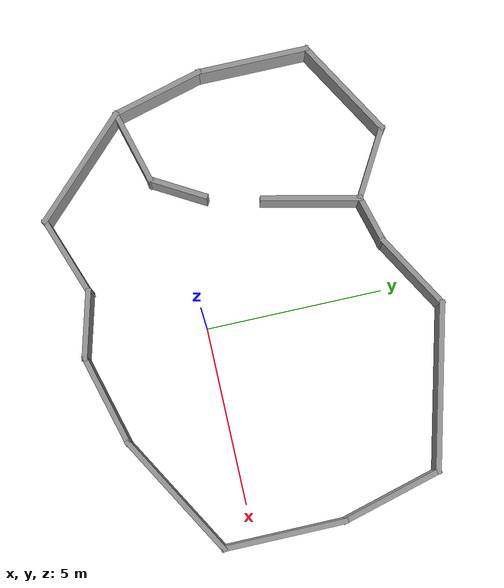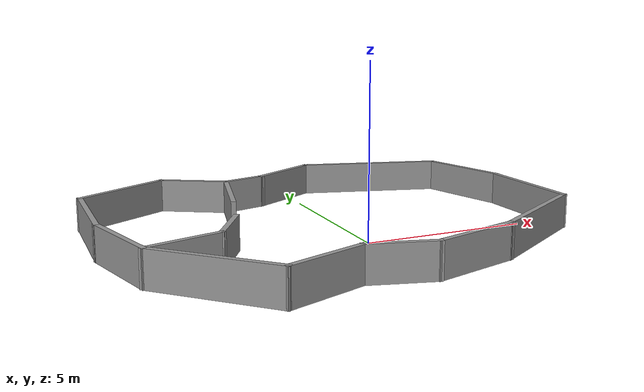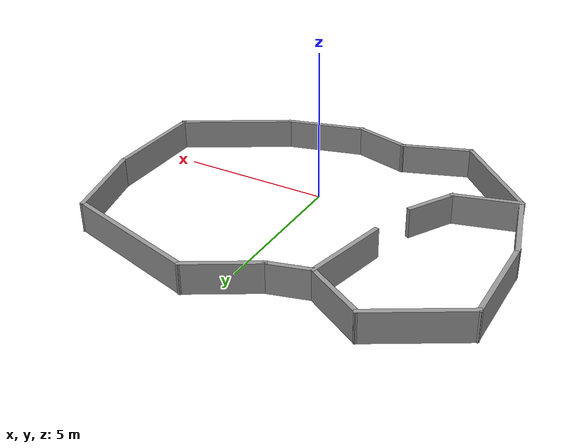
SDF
<?xml version='1.0'?>
<sdf version='1.7'>
  <model name='Walls'>
    <pose>-0.529125 1.37007 0 0 -0 0</pose>
    <link name='Wall_10'>
      <collision name='Wall_10_Collision'>
        <geometry>
          <box>
            <size>4.75 0.15 1</size>
          </box>
        </geometry>
        <pose>0 0 0.5 0 -0 0</pose>
      </collision>
      <visual name='Wall_10_Visual'>
        <pose>0 0 0.5 0 -0 0</pose>
        <geometry>
          <box>
            <size>4.75 0.15 1</size>
          </box>
        </geometry>
        <material>
          <script>
            <uri>file://media/materials/scripts/gazebo.material</uri>
            <name>Gazebo/Grey</name>
          </script>
          <ambient>1 1 1 1</ambient>
        </material>
        <meta>
          <layer>0</layer>
        </meta>
      </visual>
      <pose>3.55243 4.49722 0 0 -0 2.87979</pose>
    </link>
    <link name='Wall_11'>
      <collision name='Wall_11_Collision'>
        <geometry>
          <box>
            <size>2.5 0.15 1</size>
          </box>
        </geometry>
        <pose>0 0 0.5 0 -0 0</pose>
      </collision>
      <visual name='Wall_11_Visual'>
        <pose>0 0 0.5 0 -0 0</pose>
        <geometry>
          <box>
            <size>2.5 0.15 1</size>
          </box>
        </geometry>
        <material>
          <script>
            <uri>file://media/materials/scripts/gazebo.material</uri>
            <name>Gazebo/Grey</name>
          </script>
          <ambient>1 1 1 1</ambient>
        </material>
        <meta>
          <layer>0</layer>
        </meta>
      </visual>
      <pose>0.31322 4.50501 0 0 -0 -2.61799</pose>
    </link>
    <link name='Wall_12'>
      <collision name='Wall_12_Collision'>
        <geometry>
          <box>
            <size>1.5 0.15 1</size>
          </box>
        </geometry>
        <pose>0 0 0.5 0 -0 0</pose>
      </collision>
      <visual name='Wall_12_Visual'>
        <pose>0 0 0.5 0 -0 0</pose>
        <geometry>
          <box>
            <size>1.5 0.15 1</size>
          </box>
        </geometry>
        <material>
          <script>
            <uri>file://media/materials/scripts/gazebo.material</uri>
            <name>Gazebo/Grey</name>
          </script>
          <ambient>1 1 1 1</ambient>
        </material>
        <meta>
          <layer>0</layer>
        </meta>
      </visual>
      <pose>-1.35636 3.7428 0 0 -0 -2.87979</pose>
    </link>
    <link name='Wall_13'>
      <collision name='Wall_13_Collision'>
        <geometry>
          <box>
            <size>2.25 0.15 1</size>
          </box>
        </geometry>
        <pose>0 0 0.5 0 -0 0</pose>
      </collision>
      <visual name='Wall_13_Visual'>
        <pose>0 0 0.5 0 -0 0</pose>
        <geometry>
          <box>
            <size>2.25 0.15 1</size>
          </box>
        </geometry>
        <material>
          <script>
            <uri>file://media/materials/scripts/gazebo.material</uri>
            <name>Gazebo/Grey</name>
          </script>
          <ambient>1 1 1 1</ambient>
        </material>
        <meta>
          <layer>0</layer>
        </meta>
      </visual>
      <pose>-2.91769 4.0931 0 0 -0 2.61799</pose>
    </link>
    <link name='Wall_14'>
      <collision name='Wall_14_Collision'>
        <geometry>
          <box>
            <size>3.25 0.15 1</size>
          </box>
        </geometry>
        <pose>0 0 0.5 0 -0 0</pose>
      </collision>
      <visual name='Wall_14_Visual'>
        <pose>0 0 0.5 0 -0 0</pose>
        <geometry>
          <box>
            <size>3.25 0.15 1</size>
          </box>
        </geometry>
        <material>
          <script>
            <uri>file://media/materials/scripts/gazebo.material</uri>
            <name>Gazebo/Grey</name>
          </script>
          <ambient>1 1 1 1</ambient>
        </material>
        <meta>
          <layer>0</layer>
        </meta>
      </visual>
      <pose>-5.16935 3.8431 0 0 -0 -2.61799</pose>
    </link>
    <link name='Wall_15'>
      <collision name='Wall_15_Collision'>
        <geometry>
          <box>
            <size>3.25 0.15 1</size>
          </box>
        </geometry>
        <pose>0 0 0.5 0 -0 0</pose>
      </collision>
      <visual name='Wall_15_Visual'>
        <pose>0 0 0.5 0 -0 0</pose>
        <geometry>
          <box>
            <size>3.25 0.15 1</size>
          </box>
        </geometry>
        <material>
          <script>
            <uri>file://media/materials/scripts/gazebo.material</uri>
            <name>Gazebo/Grey</name>
          </script>
          <ambient>1 1 1 1</ambient>
        </material>
        <meta>
          <layer>0</layer>
        </meta>
      </visual>
      <pose>-6.51169 1.5181 0 0 -0 -1.5708</pose>
    </link>
    <link name='Wall_16'>
      <collision name='Wall_16_Collision'>
        <geometry>
          <box>
            <size>2.75 0.15 1</size>
          </box>
        </geometry>
        <pose>0 0 0.5 0 -0 0</pose>
      </collision>
      <visual name='Wall_16_Visual'>
        <pose>0 0 0.5 0 -0 0</pose>
        <geometry>
          <box>
            <size>2.75 0.15 1</size>
          </box>
        </geometry>
        <material>
          <script>
            <uri>file://media/materials/scripts/gazebo.material</uri>
            <name>Gazebo/Grey</name>
          </script>
          <ambient>1 1 1 1</ambient>
        </material>
        <meta>
          <layer>0</layer>
        </meta>
      </visual>
      <pose>-6.17523 -1.2876 0 0 -0 -1.309</pose>
    </link>
    <link name='Wall_17'>
      <collision name='Wall_17_Collision'>
        <geometry>
          <box>
            <size>3.75 0.15 1</size>
          </box>
        </geometry>
        <pose>0 0 0.5 0 -0 0</pose>
      </collision>
      <visual name='Wall_17_Visual'>
        <pose>0 0 0.5 0 -0 0</pose>
        <geometry>
          <box>
            <size>3.75 0.15 1</size>
          </box>
        </geometry>
        <material>
          <script>
            <uri>file://media/materials/scripts/gazebo.material</uri>
            <name>Gazebo/Grey</name>
          </script>
          <ambient>1 1 1 1</ambient>
        </material>
        <meta>
          <layer>0</layer>
        </meta>
      </visual>
      <pose>-4.56597 -3.8161 0 0 -0 -0.785398</pose>
    </link>
    <link name='Wall_18'>
      <collision name='Wall_18_Collision'>
        <geometry>
          <box>
            <size>2.45434 0.15 1</size>
          </box>
        </geometry>
        <pose>0 0 0.5 0 -0 0</pose>
      </collision>
      <visual name='Wall_18_Visual'>
        <pose>0 0 0.5 0 -0 0</pose>
        <geometry>
          <box>
            <size>2.45434 0.15 1</size>
          </box>
        </geometry>
        <material>
          <script>
            <uri>file://media/materials/scripts/gazebo.material</uri>
            <name>Gazebo/Grey</name>
          </script>
          <ambient>1 1 1 1</ambient>
        </material>
        <meta>
          <layer>0</layer>
        </meta>
      </visual>
      <pose>-2.20703 -4.70448 0 0 -0 0.340165</pose>
    </link>
    <link name='Wall_24'>
      <collision name='Wall_24_Collision'>
        <geometry>
          <box>
            <size>2.25 0.15 1</size>
          </box>
        </geometry>
        <pose>0 0 0.5 0 -0 0</pose>
      </collision>
      <visual name='Wall_24_Visual'>
        <pose>0 0 0.5 0 -0 0</pose>
        <geometry>
          <box>
            <size>2.25 0.15 1</size>
          </box>
        </geometry>
        <material>
          <script>
            <uri>file://media/materials/scripts/gazebo.material</uri>
            <name>Gazebo/Grey</name>
          </script>
          <ambient>1 1 1 1</ambient>
        </material>
        <meta>
          <layer>0</layer>
        </meta>
      </visual>
      <pose>-4.82454 -2.27155 0 0 -0 0.261799</pose>
    </link>
    <link name='Wall_25'>
      <collision name='Wall_25_Collision'>
        <geometry>
          <box>
            <size>1.75 0.15 1</size>
          </box>
        </geometry>
        <pose>0 0 0.5 0 -0 0</pose>
      </collision>
      <visual name='Wall_25_Visual'>
        <pose>0 0 0.5 0 -0 0</pose>
        <geometry>
          <box>
            <size>1.75 0.15 1</size>
          </box>
        </geometry>
        <material>
          <script>
            <uri>file://media/materials/scripts/gazebo.material</uri>
            <name>Gazebo/Grey</name>
          </script>
          <ambient>1 1 1 1</ambient>
        </material>
        <meta>
          <layer>0</layer>
        </meta>
      </visual>
      <pose>-3.41032 -1.30697 0 0 -0 1.0472</pose>
    </link>
    <link name='Wall_27'>
      <collision name='Wall_27_Collision'>
        <geometry>
          <box>
            <size>2.8515 0.15 1</size>
          </box>
        </geometry>
        <pose>0 0 0.5 0 -0 0</pose>
      </collision>
      <visual name='Wall_27_Visual'>
        <pose>0 0 0.5 0 -0 0</pose>
        <geometry>
          <box>
            <size>2.8515 0.15 1</size>
          </box>
        </geometry>
        <material>
          <script>
            <uri>file://media/materials/scripts/gazebo.material</uri>
            <name>Gazebo/Grey</name>
          </script>
          <ambient>1 1 1 1</ambient>
        </material>
        <meta>
          <layer>0</layer>
        </meta>
      </visual>
      <pose>-2.30228 2.24972 0 0 -0 1.35144</pose>
    </link>
    <link name='Wall_5'>
      <collision name='Wall_5_Collision'>
        <geometry>
          <box>
            <size>2 0.15 1</size>
          </box>
        </geometry>
        <pose>0 0 0.5 0 -0 0</pose>
      </collision>
      <visual name='Wall_5_Visual'>
        <pose>0 0 0.5 0 -0 0</pose>
        <geometry>
          <box>
            <size>2 0.15 1</size>
          </box>
        </geometry>
        <material>
          <script>
            <uri>file://media/materials/scripts/gazebo.material</uri>
            <name>Gazebo/Grey</name>
          </script>
          <ambient>1 1 1 1</ambient>
        </material>
        <meta>
          <layer>0</layer>
        </meta>
      </visual>
      <pose>-0.227394 -4.55947 0 0 -0 -0.261799</pose>
    </link>
    <link name='Wall_6'>
      <collision name='Wall_6_Collision'>
        <geometry>
          <box>
            <size>2.75 0.15 1</size>
          </box>
        </geometry>
        <pose>0 0 0.5 0 -0 0</pose>
      </collision>
      <visual name='Wall_6_Visual'>
        <pose>0 0 0.5 0 -0 0</pose>
        <geometry>
          <box>
            <size>2.75 0.15 1</size>
          </box>
        </geometry>
        <material>
          <script>
            <uri>file://media/materials/scripts/gazebo.material</uri>
            <name>Gazebo/Grey</name>
          </script>
          <ambient>1 1 1 1</ambient>
        </material>
        <meta>
          <layer>0</layer>
        </meta>
      </visual>
      <pose>1.92179 -4.46242 0 0 -0 0.261799</pose>
    </link>
    <link name='Wall_7'>
      <collision name='Wall_7_Collision'>
        <geometry>
          <box>
            <size>4 0.15 1</size>
          </box>
        </geometry>
        <pose>0 0 0.5 0 -0 0</pose>
      </collision>
      <visual name='Wall_7_Visual'>
        <pose>0 0 0.5 0 -0 0</pose>
        <geometry>
          <box>
            <size>4 0.15 1</size>
          </box>
        </geometry>
        <material>
          <script>
            <uri>file://media/materials/scripts/gazebo.material</uri>
            <name>Gazebo/Grey</name>
          </script>
          <ambient>1 1 1 1</ambient>
        </material>
        <meta>
          <layer>0</layer>
        </meta>
      </visual>
      <pose>4.84459 -3.16345 0 0 -0 0.523599</pose>
    </link>
    <link name='Wall_8'>
      <collision name='Wall_8_Collision'>
        <geometry>
          <box>
            <size>3.5 0.15 1</size>
          </box>
        </geometry>
        <pose>0 0 0.5 0 -0 0</pose>
      </collision>
      <visual name='Wall_8_Visual'>
        <pose>0 0 0.5 0 -0 0</pose>
        <geometry>
          <box>
            <size>3.5 0.15 1</size>
          </box>
        </geometry>
        <material>
          <script>
            <uri>file://media/materials/scripts/gazebo.material</uri>
            <name>Gazebo/Grey</name>
          </script>
          <ambient>1 1 1 1</ambient>
        </material>
        <meta>
          <layer>0</layer>
        </meta>
      </visual>
      <pose>6.51169 -0.52595 0 0 -0 1.5708</pose>
    </link>
    <link name='Wall_9'>
      <collision name='Wall_9_Collision'>
        <geometry>
          <box>
            <size>3 0.15 1</size>
          </box>
        </geometry>
        <pose>0 0 0.5 0 -0 0</pose>
      </collision>
      <visual name='Wall_9_Visual'>
        <pose>0 0 0.5 0 -0 0</pose>
        <geometry>
          <box>
            <size>3 0.15 1</size>
          </box>
        </geometry>
        <material>
          <script>
            <uri>file://media/materials/scripts/gazebo.material</uri>
            <name>Gazebo/Grey</name>
          </script>
          <ambient>1 1 1 1</ambient>
        </material>
        <meta>
          <layer>0</layer>
        </meta>
      </visual>
      <pose>6.14288 2.52549 0 0 -0 1.8326</pose>
    </link>
    <static>1</static>
  </model>
</sdf>
